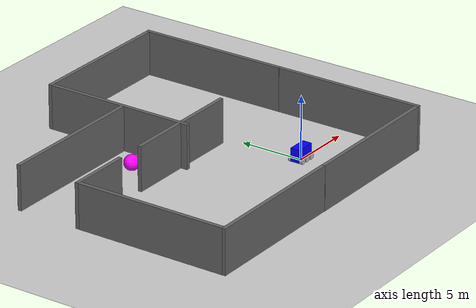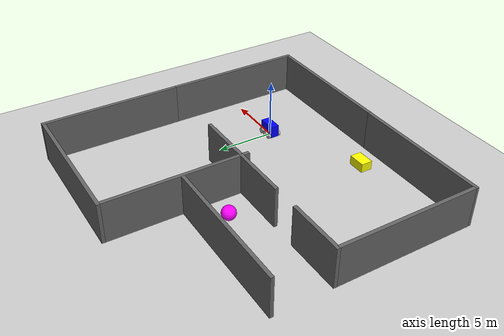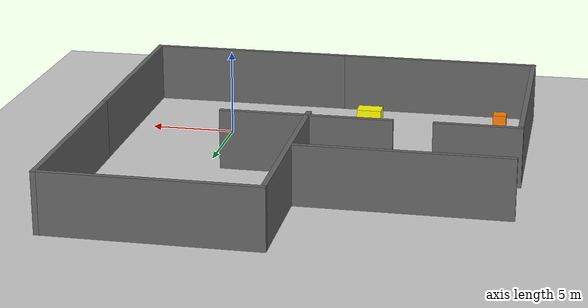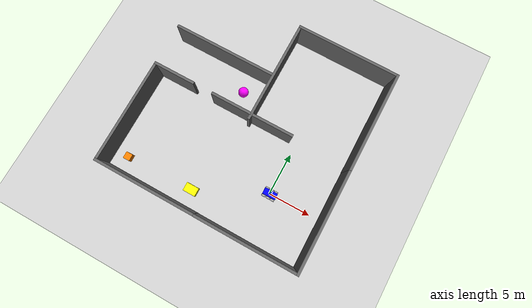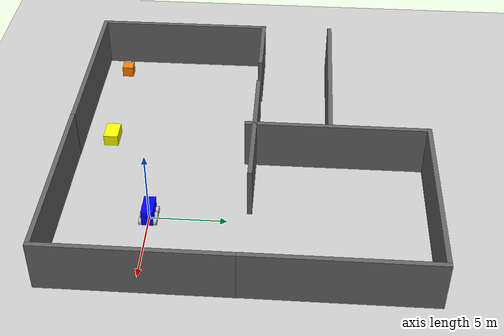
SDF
<sdf version="1.10">
 <world name="room">
  <physics name="1ms" type="ignored">
   <max_step_size>0.001</max_step_size>
   <real_time_factor>1.0</real_time_factor>
  </physics>
  <plugin filename="gz-sim-physics-system" name="gz::sim::systems::Physics"/>
  <plugin filename="gz-sim-user-commands-system" name="gz::sim::systems::UserCommands"/>
  <plugin filename="gz-sim-scene-broadcaster-system" name="gz::sim::systems::SceneBroadcaster"/>
  <plugin filename="gz-sim-sensors-system" name="gz::sim::systems::Sensors">
   <render_engine>ogre2</render_engine>
  </plugin>
  <plugin filename="gz-sim-logicalaudiosensorplugin-system" name="gz::sim::systems::LogicalAudioSensorPlugin"/>
  <light type="directional" name="sun">
   <cast_shadows>false</cast_shadows>
   <pose>0 0 10 0 0 0</pose>
   <diffuse>1 1 1 1</diffuse>
   <specular>0.05 0.05 0.05 1</specular>
   <attenuation>
    <range>1000</range>
    <constant>0.9</constant>
    <linear>0.01</linear>
    <quadratic>0.001</quadratic>
   </attenuation>
   <direction>0 0 -1</direction>
  </light>
  <model name="ground_plane">
   <static>true</static>
   <link name="link">
    <collision name="collision"><geometry><plane><normal>0 0 1</normal></plane></geometry></collision>
    <visual name="visual">
     <geometry><plane><normal>0 0 1</normal><size>100 100</size></plane></geometry>
     <material>
      <ambient>0.8 0.8 0.8 1</ambient>
      <diffuse>0.8 0.8 0.8 1</diffuse>
      <specular>0.8 0.8 0.8 1</specular>
     </material>
    </visual>
   </link>
  </model>
  <include><uri>file:///workspace/models/gazebo/flip</uri><name>FLIP</name></include>
  <include>
   <uri>file:///workspace/models/gazebo/obstacles/walls/horizontalWall0_3x12x3_5</uri>
   <name>horizontalWallBig</name>
   <pose>6.1378297805786133 0 1.75 0 0 0</pose>
  </include>
  <include>
   <uri>file:///workspace/models/gazebo/obstacles/walls/horizontalWall0_3x12x3_5</uri>
   <name>verticalWallBig</name>
   <pose>7.2243547037942335e-06 -5.8478302955627441 1.75 0 0 1.5708000357176291</pose>
  </include>
  <include>
   <uri>file:///workspace/models/gazebo/obstacles/walls/verticalWall0_3x5x3_5</uri>
   <name>verticalWallSmall</name>
   <pose>-3.2926583290100098 6.3540897369384766 1.75 0 0 1.5707999672671717</pose>
  </include>
  <include>
   <uri>file:///workspace/models/gazebo/obstacles/walls/horizontalWall0_3x12x3_5</uri>
   <name>horizontalWallBig_1</name>
   <pose>6.1292400360107422 11.98643970489502 1.75 0 0 0</pose>
  </include>
  <include>
   <uri>file:///workspace/models/gazebo/obstacles/walls/verticalWall0_3x12x3_5</uri>
   <name>verticalWallBig_1</name>
   <pose>0.00072676839772611856 17.835100173950195 1.75 0 0 1.5707999672671711</pose>
  </include>
  <include>
   <uri>file:///workspace/models/gazebo/obstacles/walls/horizontalWall0_3x12x3_5</uri>
   <name>horizontalWallBig_2</name>
   <pose>-5.8510937690734863 11.696800231933594 1.75 0 0 0</pose>
  </include>
  <include>
   <uri>file:///workspace/models/gazebo/obstacles/walls/verticalWall0_3x12x3_5</uri>
   <name>verticalWallBig_2</name>
   <pose>-11.975589752197266 -5.8330597877502441 1.75 0 0 1.5707999672671717</pose>
  </include>
  <include>
   <uri>file:///workspace/models/gazebo/obstacles/walls/horizontalWall0_3x12x3_5</uri>
   <name>horizontalWallBig_3</name>
   <pose>-17.832462310791016 0.27177301049232483 1.75 0 0 0</pose>
  </include>
  <include>
   <uri>file:///workspace/models/gazebo/obstacles/walls/verticalWall0_3x5x3_5</uri>
   <name>verticalWallSmall_2</name>
   <pose>-8.252507209777832 6.3668909072875977 1.75 0 0 1.5707999672671717</pose>
  </include>
  <include>
   <uri>file:///workspace/models/gazebo/obstacles/walls/verticalWall0_3x5x3_5</uri>
   <name>verticalWallSmall_3</name>
   <pose>-15.482864379882812 6.3641500473022452 1.75 0 0 1.5707999672671717</pose>
  </include>
  <include>
   <uri>file:///workspace/models/gazebo/obstacles/walls/verticalWall0_3x12x3_5</uri>
   <name>verticalWallBig_3</name>
   <pose>-11.987987518310547 11.363300323486328 1.75 0 0 1.5707999672671717</pose>
  </include>
  <include>
   <uri>file:///workspace/models/gazebo/obstacles/shapes/yellowBox1_5x1x1_5</uri>
   <name>yellowBox</name>
   <pose>-7.92 -3.78 0 0 0 0</pose>
  </include>
  <include>
   <uri>file:///workspace/models/gazebo/obstacles/shapes/pinkBall0_6</uri>
   <name>pinkBall</name>
   <pose>-8.2594108581542969 8.8796701431274414 0.60000002384185791 0 0 0</pose>
  </include>
  <include>
   <uri>file:///workspace/models/gazebo/obstacles/shapes/orangeBox0_8x0_8x0_8</uri>
   <name>orangeBox</name>
   <pose>-16 -4 0.4 0 0 0</pose>
  </include>
 </world>
</sdf>

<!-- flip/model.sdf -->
<sdf version="1.10">
  <model name='FLIP' canonical_link='chassis'>
    <pose>0 0 0 0 0 0</pose>

    <link name='chassis'>
      <pose relative_to='__model__'>0 0 0.625 0 0 0</pose>
      <inertial>
        <pose>0 0 0 0 0 0</pose>
        <mass>450.0</mass>
        <inertia>
          <ixx>62.438</ixx>
          <ixy>0</ixy>
          <ixz>0</ixz>
          <iyy>131.438</iyy>
          <iyz>0</iyz>
          <izz>111.188</izz>
        </inertia>
      </inertial>
      <visual name='visual'>
        <geometry><box><size>1.55 0.75 1.05</size></box></geometry>
        <material>
          <ambient>0.0 0.0 1.0 1</ambient>
          <diffuse>0.0 0.0 1.0 1</diffuse>
          <specular>0.0 0.0 1.0 1</specular>
        </material>
      </visual>
      <collision name='collision'>
        <geometry><box><size>1.55 0.75 1.05</size></box></geometry>
      </collision>
      <sensor name="imu_sensor" type="imu">
        <always_on>1</always_on>
        <update_rate>20</update_rate>
        <visualize>true</visualize>
        <topic>imu</topic>
      </sensor>
      <sensor name="gpu_lidar" type="gpu_lidar">
        <pose>0.6 0 0.3 0 0 0</pose>
        <always_on>1</always_on>
        <update_rate>10</update_rate>
        <lidar>
          <scan>
            <horizontal>
              <samples>1440</samples>
              <resolution>1</resolution>
							<min_angle>-3.141593</min_angle>
							<max_angle>3.141593</max_angle>
            </horizontal>
            <vertical>
              <samples>1</samples>
              <resolution>1</resolution>
              <min_angle>0</min_angle>
              <max_angle>0</max_angle>
            </vertical>
          </scan>
          <range>
            <min>0.08</min>
            <max>10.0</max>
            <resolution>0.01</resolution>
          </range>
        </lidar>
        <visualize>true</visualize>
        <topic>lidar_frontier</topic>
      </sensor>
    </link>

    <!-- LIDAR SENSOR -->
    <include>
			<uri>file:///workspace/models/gazebo/plugins/lidar_sensor.sdf</uri>
        <name>3D_LidarSensor</name>
        <pose relative_to='chassis'>0.6 0 0.3 0 0 0</pose>
    </include>

    <joint name="lidar_joint" type="fixed">
      <parent>chassis</parent>
      <child>3D_LidarSensor::lidar_sensor_link</child>
    </joint>

    <!-- LOGICAL AUDIO SENSOR -->
    <include>
			<uri>file:///workspace/models/gazebo/plugins/logical_audio_sensor.sdf</uri>
        <name>car_mic</name>
        <pose relative_to="chassis">0 0 0.6 0 0 0</pose>
    </include>

    <joint name="mic_joint" type="fixed">
      <parent>chassis</parent>
      <child>car_mic::mic_body</child>
    </joint>

    <!-- AIR PRESSURE SENSOR -->

    <!-- =============includes + plugin + joint van sensoren=========== -->
    <!-- THERMAL CAMERA -->
    <include>
			<uri>file:///workspace/models/gazebo/plugins/thermal_camera.sdf</uri>
      <name>thermal_cam_instance</name>
      <pose relative_to="chassis">0.3 0 -0.2 0 0 0</pose>
    </include>

    <!-- thermal camera aan chassis -->
    <joint name="thermal_camera_fixed" type="fixed">
      <parent>chassis</parent>
      <child>thermal_cam_instance::thermal_body</child>
    </joint>

    <!-- FRONT CAMERA -->
    <include>
			<uri>file:///workspace/models/gazebo/plugins/front_camera.sdf</uri>
      <name>front_camera</name>
      <pose>0.9 0 1.2 0 0 0</pose>
    </include>

    <joint name="front_cam_joint" type="fixed">
      <parent>chassis</parent>
      <child>front_camera::front_camera_link</child>
    </joint>

    <!-- REAR CAMERA -->
    <include>
			<uri>file:///workspace/models/gazebo/plugins/rear_camera.sdf</uri>
      <name>rear_camera</name>
      <pose>-0.9 0 1.2 0 0 0</pose>
    </include>

    <joint name="rear_cam_joint" type="fixed">
      <parent>chassis</parent>
      <child>rear_camera::rear_camera_link</child>
    </joint>

		<!-- FRONTIER LIDAR -->

    <link name='left_back_wheel'>
      <pose relative_to="chassis">-0.533 0.475 -0.383 -1.5707 0 0</pose>
      <inertial><mass>5</mass><inertia><ixx>0.694</ixx><ixy>0</ixy><ixz>0</ixz><iyy>1.460</iyy><iyz>0</iyz><izz>1.235</izz></inertia></inertial>
      <visual name='visual'><geometry><cylinder><radius>0.242</radius><length>0.2</length></cylinder></geometry></visual>
      <collision name='collision'><geometry><cylinder><radius>0.242</radius><length>0.2</length></cylinder></geometry></collision>
    </link>

    <link name='left_middle_wheel'>
      <pose relative_to="chassis">0 0.475 -0.383 -1.5707 0 0</pose>
      <inertial><mass>5</mass><inertia><ixx>0.694</ixx><ixy>0</ixy><ixz>0</ixz><iyy>1.460</iyy><iyz>0</iyz><izz>1.235</izz></inertia></inertial>
      <visual name='visual'><geometry><cylinder><radius>0.242</radius><length>0.2</length></cylinder></geometry></visual>
      <collision name='collision'><geometry><cylinder><radius>0.242</radius><length>0.2</length></cylinder></geometry></collision>
    </link>

    <link name='right_back_wheel'>
      <pose relative_to="chassis">-0.533 -0.475 -0.383 -1.5707 0 0</pose>
      <inertial><mass>5</mass><inertia><ixx>0.694</ixx><ixy>0</ixy><ixz>0</ixz><iyy>1.460</iyy><iyz>0</iyz><izz>1.235</izz></inertia></inertial>
      <visual name='visual'><geometry><cylinder><radius>0.242</radius><length>0.2</length></cylinder></geometry></visual>
      <collision name='collision'><geometry><cylinder><radius>0.242</radius><length>0.2</length></cylinder></geometry></collision>
    </link>

    <link name='right_middle_wheel'>
      <pose relative_to="chassis">0 -0.475 -0.383 -1.5707 0 0</pose>
      <inertial><mass>5</mass><inertia><ixx>0.694</ixx><ixy>0</ixy><ixz>0</ixz><iyy>1.460</iyy><iyz>0</iyz><izz>1.235</izz></inertia></inertial>
      <visual name='visual'><geometry><cylinder><radius>0.242</radius><length>0.2</length></cylinder></geometry></visual>
      <collision name='collision'><geometry><cylinder><radius>0.242</radius><length>0.2</length></cylinder></geometry></collision>
    </link>

    <link name='left_front_steer_link'>
      <pose relative_to="chassis">0.533 0.475 -0.383 0 0 0</pose>
      <inertial><mass>1.0</mass><inertia><ixx>0.01</ixx><ixy>0</ixy><ixz>0</ixz><iyy>0.01</iyy><iyz>0</iyz><izz>0.01</izz></inertia></inertial>
    </link>

    <link name='right_front_steer_link'>
      <pose relative_to="chassis">0.533 -0.475 -0.383 0 0 0</pose>
      <inertial><mass>1.0</mass><inertia><ixx>0.01</ixx><ixy>0</ixy><ixz>0</ixz><iyy>0.01</iyy><iyz>0</iyz><izz>0.01</izz></inertia></inertial>
    </link>

    <link name='left_front_wheel'>
      <pose relative_to="left_front_steer_link">0 0 0 -1.5707 0 0</pose>
      <inertial><mass>5</mass><inertia><ixx>0.694</ixx><ixy>0</ixy><ixz>0</ixz><iyy>1.460</iyy><iyz>0</iyz><izz>1.235</izz></inertia></inertial>
      <visual name='visual'>
        <geometry><cylinder><radius>0.242</radius><length>0.2</length></cylinder></geometry>
      </visual>
      <collision name='collision'><geometry><cylinder><radius>0.242</radius><length>0.2</length></cylinder></geometry></collision>
    </link>

    <link name='right_front_wheel'>
      <pose relative_to="right_front_steer_link">0 0 0 -1.5707 0 0</pose>
      <inertial><mass>5</mass><inertia><ixx>0.694</ixx><ixy>0</ixy><ixz>0</ixz><iyy>1.460</iyy><iyz>0</iyz><izz>1.235</izz></inertia></inertial>
      <visual name='visual'>
        <geometry><cylinder><radius>0.242</radius><length>0.2</length></cylinder></geometry>
      </visual>
      <collision name='collision'><geometry><cylinder><radius>0.242</radius><length>0.2</length></cylinder></geometry></collision>
    </link>

    <!-- Wheel joints -->
    <joint name="left_front_wheel_joint" type="revolute">
    <parent>chassis</parent>
    <child>left_front_wheel</child>
    <axis><xyz>0 0 1</xyz></axis>
    </joint>

    <joint name="left_middle_wheel_joint" type="revolute">
    <parent>chassis</parent>
    <child>left_middle_wheel</child>
    <axis><xyz>0 0 1</xyz></axis>
    </joint>

    <joint name="left_back_wheel_joint" type="revolute">
    <parent>chassis</parent>
    <child>left_back_wheel</child>
    <axis><xyz>0 0 1</xyz></axis>
    </joint>

    <joint name="right_front_wheel_joint" type="revolute">
    <parent>chassis</parent>
    <child>right_front_wheel</child>
    <axis><xyz>0 0 1</xyz></axis>
    </joint>

    <joint name="right_middle_wheel_joint" type="revolute">
    <parent>chassis</parent>
    <child>right_middle_wheel</child>
    <axis><xyz>0 0 1</xyz></axis>
    </joint>

    <joint name="right_back_wheel_joint" type="revolute">
    <parent>chassis</parent>
    <child>right_back_wheel</child>
    <axis><xyz>0 0 1</xyz></axis>
    </joint>

    <!-- Diff Drive Plugin -->
    <plugin
    filename="gz-sim-diff-drive-system"
    name="gz::sim::systems::DiffDrive">

    <!-- all 6 wheels driven -->
    <left_joint>left_back_wheel_joint</left_joint>
    <left_joint>left_middle_wheel_joint</left_joint>
    <left_joint>left_front_wheel_joint</left_joint>

    <right_joint>right_back_wheel_joint</right_joint>
    <right_joint>right_middle_wheel_joint</right_joint>
    <right_joint>right_front_wheel_joint</right_joint>

    <wheel_separation>0.95</wheel_separation>
    <wheel_radius>0.242</wheel_radius>

    <topic>/model/FLIP/cmd_vel</topic>
    <odom_topic>/model/FLIP/odometry</odom_topic>
    <tf_topic>/model/FLIP/tf</tf_topic>

    <frame_id>odom</frame_id>
    <child_frame_id>chassis</child_frame_id>

    </plugin>

    <!-- Moving Forward-->
    <plugin filename="gz-sim-triggered-publisher-system"
            name="gz::sim::systems::TriggeredPublisher">
        <input type="gz.msgs.Int32" topic="/keyboard/keypress">
            <match field="data">16777235</match>
        </input>
        <output type="gz.msgs.Twist" topic="/model/FLIP/cmd_vel">
            linear: {x: 0.5}, angular: {z: 0.0}
        </output>
    </plugin>

    <!-- Moving Backward-->
    <plugin filename="gz-sim-triggered-publisher-system"
            name="gz::sim::systems::TriggeredPublisher">
        <input type="gz.msgs.Int32" topic="/keyboard/keypress">
            <match field="data">16777237</match>
        </input>
        <output type="gz.msgs.Twist" topic="/model/FLIP/cmd_vel">
            linear: {x: -0.5}, angular: {z: 0.0}
        </output>
    </plugin>

    <!-- Moving left-->
    <plugin filename="gz-sim-triggered-publisher-system"
            name="gz::sim::systems::TriggeredPublisher">
        <input type="gz.msgs.Int32" topic="/keyboard/keypress">
            <match field="data">16777234</match>
        </input>
        <output type="gz.msgs.Twist" topic="/model/FLIP/cmd_vel">
            linear: {x: 0.0}, angular: {z: 1.0}
        </output>
    </plugin>

    <!-- Moving right-->
    <plugin filename="gz-sim-triggered-publisher-system"
            name="gz::sim::systems::TriggeredPublisher">
        <input type="gz.msgs.Int32" topic="/keyboard/keypress">
            <match field="data">16777236</match>
        </input>
        <output type="gz.msgs.Twist" topic="/model/FLIP/cmd_vel">
            linear: {x: 0.0}, angular: {z: -1.0}
        </output>
    </plugin>
  </model>
</sdf>

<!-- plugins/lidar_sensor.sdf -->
<sdf version="1.10">

  <model name="lidar_sensor" canonical_link="lidar_sensor_link">
    <pose>0 0 0 0 0 0</pose>
    <static>false</static>

    <link name='lidar_sensor_link'>
      <inertial>
        <mass>0.1</mass>
        <inertia>
          <ixx>0.000166</ixx><ixy>0</ixy><ixz>0</ixz>
          <iyy>0.000166</iyy><iyz>0</iyz>
          <izz>0.000166</izz>
        </inertia>
      </inertial>
      <visual name='visual'>
        <geometry><cylinder><radius>0.15</radius><length>0.08</length></cylinder></geometry>
        <material>
          <ambient>1 0.0 0.0 1</ambient>
          <diffuse>1.0 0.0 0.0 1</diffuse>
        </material>
      </visual>
      <collision name='collision'>
        <geometry><cylinder><radius>0.05</radius><length>0.08</length></cylinder></geometry>
      </collision>

      <sensor name="gpu_lidar" type="gpu_lidar">
        <pose>0 0 0 0 0 0</pose>
        <always_on>1</always_on>
        <update_rate>20</update_rate>
        <lidar>
          <scan>
            <horizontal>
              <samples>320</samples><resolution>1</resolution>
              <min_angle>-3.14159</min_angle><max_angle>3.14159</max_angle>
            </horizontal>
            <vertical>
              <samples>64</samples><resolution>1</resolution>
              <min_angle>-0.610865</min_angle>
              <max_angle>0.610865</max_angle>
            </vertical>
          </scan>
          <range><min>0.08</min><max>10.0</max><resolution>0.01</resolution></range>
        </lidar>
        <visualize>true</visualize>
        <topic>lidar</topic>
      </sensor>
    </link>
  </model>

</sdf>

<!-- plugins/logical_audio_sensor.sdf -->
<sdf version="1.10">
  <model name="logical_audio_mic">
    <link name="mic_body">
      <visual name="mic_visual">
        <geometry><sphere><radius>0.05</radius></sphere></geometry>
        <material><ambient>0.5 0.5 0.5 1</ambient><diffuse>0.5 0.5 0.5 1</diffuse></material>
      </visual>
      </link>

    <plugin filename="gz-sim-logicalaudiosensorplugin-system"
            name="gz::sim::systems::LogicalAudioSensorPlugin">
      <microphone>
        <id>1</id>
        <pose>0 0 0 0 0 0</pose>
        <volume_threshold>0.1</volume_threshold>
      </microphone>
    </plugin>
  </model>
</sdf>

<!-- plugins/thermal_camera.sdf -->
<sdf version="1.10">
  <model name="thermal_camera_model">
    <link name="thermal_body">
      <pose>0 0 0 0 0 0</pose>

      <visual name="thermal_visual">
        <geometry><box><size>0.1 0.1 0.1</size></box></geometry>
        <material>
          <ambient>1 0 0 1</ambient>
          <diffuse>1 0 0 1</diffuse>
          <specular>0.2 0.2 0.2 1</specular>
        </material>
      </visual>

      <collision name="thermal_collision">
        <geometry><box><size>0.1 0.1 0.1</size></box></geometry>
      </collision>

      <inertial>
        <mass>0.5</mass>
        <inertia>
          <ixx>0.001</ixx><iyy>0.001</iyy><izz>0.001</izz>
          <ixy>0</ixy><ixz>0</ixz><iyz>0</iyz>
        </inertia>
      </inertial>

      <sensor name="thermal_camera" type="thermal">
        <pose>0 0 0 0 0 0</pose>
        <always_on>true</always_on>
        <update_rate>30</update_rate>
        <visualize>true</visualize>
        <topic>/FLIP/thermal_camera</topic>
        <camera>
          <horizontal_fov>1.047</horizontal_fov>
          <image>
            <width>320</width>
            <height>240</height>
            <format>L16</format>
          </image>
          <clip>
            <near>0.1</near>
            <far>100</far>
          </clip>
        </camera>
        <plugin
          filename="gz-sim-thermal-sensor-system"
          name="gz::sim::systems::ThermalSensor">
        </plugin>
      </sensor>
    </link>
  </model>
</sdf>

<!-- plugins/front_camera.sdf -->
<sdf version="1.10">

  <model name="front_camera" canonical_link="front_camera_link">
    <pose>0 0 0 0 0 0</pose>
    <static>false</static>

    <link name="front_camera_link">

      <inertial>
        <mass>0.5</mass>
        <inertia>
          <ixx>0.001</ixx>
          <iyy>0.001</iyy>
          <izz>0.001</izz>
        </inertia>
      </inertial>

      <sensor name="camera" type="camera">
        <pose>0 0 0 0 0 0</pose>

        <always_on>true</always_on>
        <update_rate>30</update_rate>

        <camera>
          <horizontal_fov>1.047</horizontal_fov>
          <image>
            <width>640</width>
            <height>480</height>
            <format>R8G8B8</format>
          </image>
          <clip>
            <near>0.1</near>
            <far>100</far>
          </clip>
        </camera>

        <topic>/front/image</topic>
      </sensor>

    </link>
  </model>

</sdf>

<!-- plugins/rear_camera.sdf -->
<sdf version="1.10">

  <model name="rear_camera" canonical_link="rear_camera_link">
    <pose>0 0 0 0 0 0</pose>
    <static>false</static>

    <link name="rear_camera_link">

      <inertial>
        <mass>0.5</mass>
        <inertia>
          <ixx>0.001</ixx>
          <iyy>0.001</iyy>
          <izz>0.001</izz>
        </inertia>
      </inertial>

      <sensor name="camera" type="camera">
        <pose>0 0 0 0 0 3.14159</pose>

        <always_on>true</always_on>
        <update_rate>30</update_rate>

        <camera>
          <horizontal_fov>1.047</horizontal_fov>
          <image>
            <width>640</width>
            <height>480</height>
            <format>R8G8B8</format>
          </image>
          <clip>
            <near>0.1</near>
            <far>100</far>
          </clip>
        </camera>

        <topic>/rear/image</topic>
      </sensor>

    </link>
  </model>

</sdf>

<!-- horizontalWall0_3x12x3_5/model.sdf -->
<sdf version="1.10">
    <model name="horizontalWall0_3x12x3_5">
      <static>true</static>
      <pose>4.2 0 1.75 0 0 0</pose>
      <link name="link">
        <collision name="collision">
          <geometry><box><size>0.3 12.0 3.5</size></box></geometry>
        </collision>
        <visual name="visual">
          <geometry><box><size>0.3 12.0 3.5</size></box></geometry>
          <material>
            <ambient>0.4 0.4 0.4 1</ambient>
            <diffuse>0.4 0.4 0.4 1</diffuse>
            <specular>0.2 0.2 0.2 1</specular>
          </material>
        </visual>
      </link>
    </model>
</sdf>

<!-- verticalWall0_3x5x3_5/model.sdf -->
<sdf version="1.10">
    <model name="horizontalWall0_3x5x3_5">
      <static>true</static>
      <pose>4.2 0 1.75 0 0 0</pose>
      <link name="link">
        <collision name="collision">
          <geometry><box><size>0.3 5.0 3.5</size></box></geometry>
        </collision>
        <visual name="visual">
          <geometry><box><size>0.3 5.0 3.5</size></box></geometry>
          <material>
            <ambient>0.4 0.4 0.4 1</ambient>
            <diffuse>0.4 0.4 0.4 1</diffuse>
            <specular>0.2 0.2 0.2 1</specular>
          </material>
        </visual>
      </link>
    </model>
</sdf>

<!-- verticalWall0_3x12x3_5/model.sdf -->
<sdf version="1.10">
    <model name="verticalWall0_3x12x3_5">
      <static>true</static>
      <pose>0 3.9 1.75 0 0 1.5708</pose>
      <link name="link">
        <collision name="collision">
          <geometry><box><size>0.3 12.0 3.5</size></box></geometry>
        </collision>
        <visual name="visual">
          <geometry><box><size>0.3 12.0 3.5</size></box></geometry>
          <material>
            <ambient>0.4 0.4 0.4 1</ambient>
            <diffuse>0.4 0.4 0.4 1</diffuse>
            <specular>0.2 0.2 0.2 1</specular>
          </material>
        </visual>
      </link>
    </model>
</sdf>

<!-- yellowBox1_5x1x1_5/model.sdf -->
<sdf version="1.10">
    <model name="yellowBox1_5x1x1_5">
      <static>true</static>
      <pose>-3 2 0.75 0 0 0</pose>
      <link name="link">
        <collision name="collision">
          <geometry><box><size>1.5 1 1.5</size></box></geometry>
        </collision>
        <visual name="visual">
          <geometry><box><size>1.5 1 1.5</size></box></geometry>
          <material><ambient>1 1 0 1</ambient><diffuse>1 1 0 1</diffuse></material>
        </visual>
      </link>
    </model>
</sdf>

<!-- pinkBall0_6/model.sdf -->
<sdf version="1.10">
    <model name="pinkBall0_6">
      <static>true</static>
      <pose>1 3 0.6 0 0 0</pose>
      <link name="link">
        <collision name="collision">
          <geometry><sphere><radius>0.6</radius></sphere></geometry>
        </collision>
        <visual name="visual">
          <geometry><sphere><radius>0.6</radius></sphere></geometry>
          <material><ambient>1 0 1 1</ambient><diffuse>1 0 1 1</diffuse></material>
        </visual>
      </link>
    </model>
</sdf>

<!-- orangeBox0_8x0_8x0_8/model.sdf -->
<sdf version="1.10">
    <model name="orangeBox0_8x0_8x0_8">
      <static>true</static>
      <pose>-2 0 0.4 0 0 0</pose>
      <link name="link">
        <collision name="collision">
          <geometry><box><size>0.8 0.8 0.8</size></box></geometry>
        </collision>
        <visual name="visual">
          <geometry><box><size>0.8 0.8 0.8</size></box></geometry>
          <material><ambient>1 0.5 0 1</ambient><diffuse>1 0.5 0 1</diffuse></material>
        </visual>
      </link>
    </model>
</sdf>
